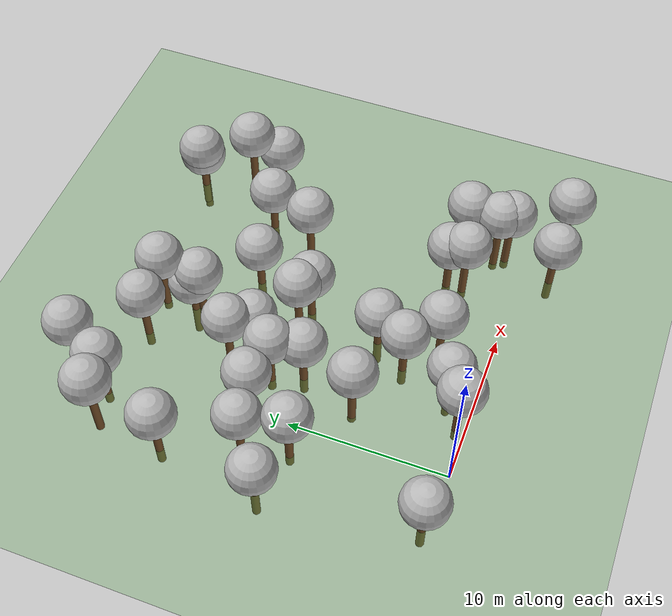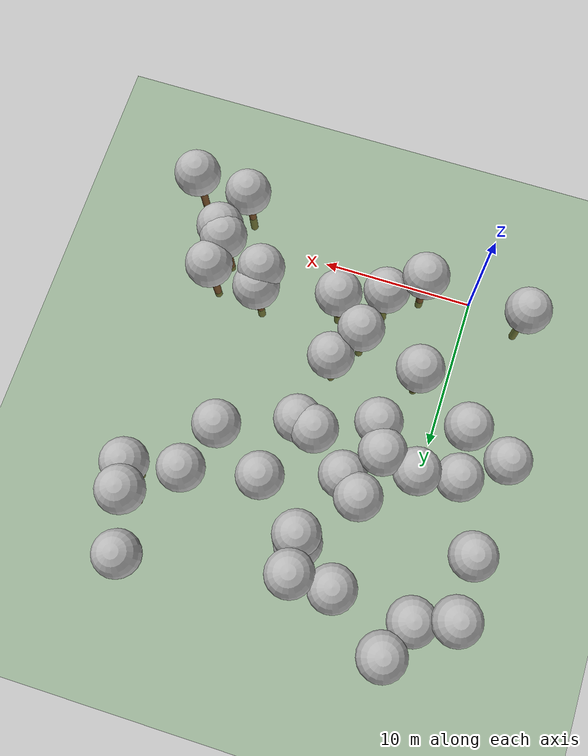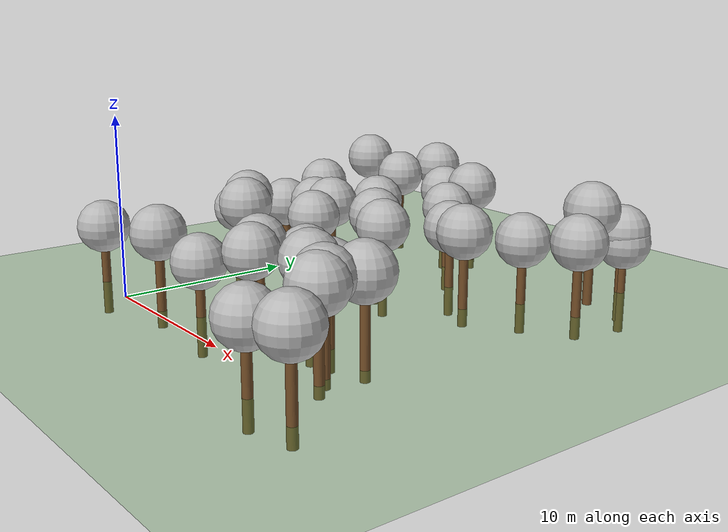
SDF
<sdf version="1.5">
 <world name="default">
  <model name="tree_simple497">
   <static>1</static>
   <link name="link">
    <pose>0 0 0.1 0 -0 0</pose>
    <collision name="collision_trunk">
     <pose>0 0 2 0 -0 0</pose>
     <geometry><cylinder><radius>0.25</radius><length>4</length></cylinder></geometry>
    </collision>
    <collision name="collision_treetop">
     <pose>0 0 5.2 0 -0 0</pose>
     <geometry><sphere><radius>1.5</radius></sphere></geometry>
    </collision>
    <visual name="trunk">
     <pose>0 0 2 0 -0 0</pose>
     <geometry><cylinder><radius>0.25</radius><length>4</length></cylinder></geometry>
     <material>
      <script>
       <uri>model://tree_simple/scripts</uri>
       <uri>model://tree_simple/materials/textures</uri>
       <name>TreeSimple/Trunk</name>
      </script>
     </material>
    </visual>
    <visual name="treetop">
     <pose>0 0 5.2 0 -0 0</pose>
     <geometry><sphere><radius>1.5</radius></sphere></geometry>
     <material>
      <script>
       <uri>model://tree_simple/scripts</uri>
       <uri>model://tree_simple/materials/textures</uri>
       <name>TreeSimple/Treetop</name>
      </script>
     </material>
    </visual>
   </link>
   <pose>16.5730666381 19.0016793819 -0.0 0 -0 0</pose>
  </model>
  <model name="tree_simple495">
   <static>1</static>
   <link name="link">
    <pose>0 0 0.1 0 -0 0</pose>
    <collision name="collision_trunk">
     <pose>0 0 2 0 -0 0</pose>
     <geometry><cylinder><radius>0.25</radius><length>4</length></cylinder></geometry>
    </collision>
    <collision name="collision_treetop">
     <pose>0 0 5.2 0 -0 0</pose>
     <geometry><sphere><radius>1.5</radius></sphere></geometry>
    </collision>
    <visual name="trunk">
     <pose>0 0 2 0 -0 0</pose>
     <geometry><cylinder><radius>0.25</radius><length>4</length></cylinder></geometry>
     <material>
      <script>
       <uri>model://tree_simple/scripts</uri>
       <uri>model://tree_simple/materials/textures</uri>
       <name>TreeSimple/Trunk</name>
      </script>
     </material>
    </visual>
    <visual name="treetop">
     <pose>0 0 5.2 0 -0 0</pose>
     <geometry><sphere><radius>1.5</radius></sphere></geometry>
     <material>
      <script>
       <uri>model://tree_simple/scripts</uri>
       <uri>model://tree_simple/materials/textures</uri>
       <name>TreeSimple/Treetop</name>
      </script>
     </material>
    </visual>
   </link>
   <pose>13.2663357304 3.23501246435 -0.7742167042662054 0 -0 0</pose>
  </model>
  <model name="tree_simple486">
   <static>1</static>
   <link name="link">
    <pose>0 0 0.1 0 -0 0</pose>
    <collision name="collision_trunk">
     <pose>0 0 2 0 -0 0</pose>
     <geometry><cylinder><radius>0.25</radius><length>4</length></cylinder></geometry>
    </collision>
    <collision name="collision_treetop">
     <pose>0 0 5.2 0 -0 0</pose>
     <geometry><sphere><radius>1.5</radius></sphere></geometry>
    </collision>
    <visual name="trunk">
     <pose>0 0 2 0 -0 0</pose>
     <geometry><cylinder><radius>0.25</radius><length>4</length></cylinder></geometry>
     <material>
      <script>
       <uri>model://tree_simple/scripts</uri>
       <uri>model://tree_simple/materials/textures</uri>
       <name>TreeSimple/Trunk</name>
      </script>
     </material>
    </visual>
    <visual name="treetop">
     <pose>0 0 5.2 0 -0 0</pose>
     <geometry><sphere><radius>1.5</radius></sphere></geometry>
     <material>
      <script>
       <uri>model://tree_simple/scripts</uri>
       <uri>model://tree_simple/materials/textures</uri>
       <name>TreeSimple/Treetop</name>
      </script>
     </material>
    </visual>
   </link>
   <pose>8.18281559396 11.6524151823 -1.3867703076284112 0 -0 0</pose>
  </model>
  <model name="tree_simple480">
   <static>1</static>
   <link name="link">
    <pose>0 0 0.1 0 -0 0</pose>
    <collision name="collision_trunk">
     <pose>0 0 2 0 -0 0</pose>
     <geometry><cylinder><radius>0.25</radius><length>4</length></cylinder></geometry>
    </collision>
    <collision name="collision_treetop">
     <pose>0 0 5.2 0 -0 0</pose>
     <geometry><sphere><radius>1.5</radius></sphere></geometry>
    </collision>
    <visual name="trunk">
     <pose>0 0 2 0 -0 0</pose>
     <geometry><cylinder><radius>0.25</radius><length>4</length></cylinder></geometry>
     <material>
      <script>
       <uri>model://tree_simple/scripts</uri>
       <uri>model://tree_simple/materials/textures</uri>
       <name>TreeSimple/Trunk</name>
      </script>
     </material>
    </visual>
    <visual name="treetop">
     <pose>0 0 5.2 0 -0 0</pose>
     <geometry><sphere><radius>1.5</radius></sphere></geometry>
     <material>
      <script>
       <uri>model://tree_simple/scripts</uri>
       <uri>model://tree_simple/materials/textures</uri>
       <name>TreeSimple/Treetop</name>
      </script>
     </material>
    </visual>
   </link>
   <pose>-2.16211412072 12.1351070175 -1.9079232740041454 0 -0 0</pose>
  </model>
  <model name="tree_simple471">
   <static>1</static>
   <link name="link">
    <pose>0 0 0.1 0 -0 0</pose>
    <collision name="collision_trunk">
     <pose>0 0 2 0 -0 0</pose>
     <geometry><cylinder><radius>0.25</radius><length>4</length></cylinder></geometry>
    </collision>
    <collision name="collision_treetop">
     <pose>0 0 5.2 0 -0 0</pose>
     <geometry><sphere><radius>1.5</radius></sphere></geometry>
    </collision>
    <visual name="trunk">
     <pose>0 0 2 0 -0 0</pose>
     <geometry><cylinder><radius>0.25</radius><length>4</length></cylinder></geometry>
     <material>
      <script>
       <uri>model://tree_simple/scripts</uri>
       <uri>model://tree_simple/materials/textures</uri>
       <name>TreeSimple/Trunk</name>
      </script>
     </material>
    </visual>
    <visual name="treetop">
     <pose>0 0 5.2 0 -0 0</pose>
     <geometry><sphere><radius>1.5</radius></sphere></geometry>
     <material>
      <script>
       <uri>model://tree_simple/scripts</uri>
       <uri>model://tree_simple/materials/textures</uri>
       <name>TreeSimple/Treetop</name>
      </script>
     </material>
    </visual>
   </link>
   <pose>-4.10985349052 16.4703272545 -1.4061973708859414 0 -0 0</pose>
  </model>
  <model name="tree_simple465">
   <static>1</static>
   <link name="link">
    <pose>0 0 0.1 0 -0 0</pose>
    <collision name="collision_trunk">
     <pose>0 0 2 0 -0 0</pose>
     <geometry><cylinder><radius>0.25</radius><length>4</length></cylinder></geometry>
    </collision>
    <collision name="collision_treetop">
     <pose>0 0 5.2 0 -0 0</pose>
     <geometry><sphere><radius>1.5</radius></sphere></geometry>
    </collision>
    <visual name="trunk">
     <pose>0 0 2 0 -0 0</pose>
     <geometry><cylinder><radius>0.25</radius><length>4</length></cylinder></geometry>
     <material>
      <script>
       <uri>model://tree_simple/scripts</uri>
       <uri>model://tree_simple/materials/textures</uri>
       <name>TreeSimple/Trunk</name>
      </script>
     </material>
    </visual>
    <visual name="treetop">
     <pose>0 0 5.2 0 -0 0</pose>
     <geometry><sphere><radius>1.5</radius></sphere></geometry>
     <material>
      <script>
       <uri>model://tree_simple/scripts</uri>
       <uri>model://tree_simple/materials/textures</uri>
       <name>TreeSimple/Treetop</name>
      </script>
     </material>
    </visual>
   </link>
   <pose>5.78708546562 20.6382949275 -0.713355975327963 0 -0 0</pose>
  </model>
  <model name="tree_simple450">
   <static>1</static>
   <link name="link">
    <pose>0 0 0.1 0 -0 0</pose>
    <collision name="collision_trunk">
     <pose>0 0 2 0 -0 0</pose>
     <geometry><cylinder><radius>0.25</radius><length>4</length></cylinder></geometry>
    </collision>
    <collision name="collision_treetop">
     <pose>0 0 5.2 0 -0 0</pose>
     <geometry><sphere><radius>1.5</radius></sphere></geometry>
    </collision>
    <visual name="trunk">
     <pose>0 0 2 0 -0 0</pose>
     <geometry><cylinder><radius>0.25</radius><length>4</length></cylinder></geometry>
     <material>
      <script>
       <uri>model://tree_simple/scripts</uri>
       <uri>model://tree_simple/materials/textures</uri>
       <name>TreeSimple/Trunk</name>
      </script>
     </material>
    </visual>
    <visual name="treetop">
     <pose>0 0 5.2 0 -0 0</pose>
     <geometry><sphere><radius>1.5</radius></sphere></geometry>
     <material>
      <script>
       <uri>model://tree_simple/scripts</uri>
       <uri>model://tree_simple/materials/textures</uri>
       <name>TreeSimple/Treetop</name>
      </script>
     </material>
    </visual>
   </link>
   <pose>16.0273432372 22.5148519884 -2.4468775244466086 0 -0 0</pose>
  </model>
  <model name="tree_simple442">
   <static>1</static>
   <link name="link">
    <pose>0 0 0.1 0 -0 0</pose>
    <collision name="collision_trunk">
     <pose>0 0 2 0 -0 0</pose>
     <geometry><cylinder><radius>0.25</radius><length>4</length></cylinder></geometry>
    </collision>
    <collision name="collision_treetop">
     <pose>0 0 5.2 0 -0 0</pose>
     <geometry><sphere><radius>1.5</radius></sphere></geometry>
    </collision>
    <visual name="trunk">
     <pose>0 0 2 0 -0 0</pose>
     <geometry><cylinder><radius>0.25</radius><length>4</length></cylinder></geometry>
     <material>
      <script>
       <uri>model://tree_simple/scripts</uri>
       <uri>model://tree_simple/materials/textures</uri>
       <name>TreeSimple/Trunk</name>
      </script>
     </material>
    </visual>
    <visual name="treetop">
     <pose>0 0 5.2 0 -0 0</pose>
     <geometry><sphere><radius>1.5</radius></sphere></geometry>
     <material>
      <script>
       <uri>model://tree_simple/scripts</uri>
       <uri>model://tree_simple/materials/textures</uri>
       <name>TreeSimple/Treetop</name>
      </script>
     </material>
    </visual>
   </link>
   <pose>-1.68249170611 21.1094247696 -1.0683993130497795 0 -0 0</pose>
  </model>
  <model name="tree_simple421">
   <static>1</static>
   <link name="link">
    <pose>0 0 0.1 0 -0 0</pose>
    <collision name="collision_trunk">
     <pose>0 0 2 0 -0 0</pose>
     <geometry><cylinder><radius>0.25</radius><length>4</length></cylinder></geometry>
    </collision>
    <collision name="collision_treetop">
     <pose>0 0 5.2 0 -0 0</pose>
     <geometry><sphere><radius>1.5</radius></sphere></geometry>
    </collision>
    <visual name="trunk">
     <pose>0 0 2 0 -0 0</pose>
     <geometry><cylinder><radius>0.25</radius><length>4</length></cylinder></geometry>
     <material>
      <script>
       <uri>model://tree_simple/scripts</uri>
       <uri>model://tree_simple/materials/textures</uri>
       <name>TreeSimple/Trunk</name>
      </script>
     </material>
    </visual>
    <visual name="treetop">
     <pose>0 0 5.2 0 -0 0</pose>
     <geometry><sphere><radius>1.5</radius></sphere></geometry>
     <material>
      <script>
       <uri>model://tree_simple/scripts</uri>
       <uri>model://tree_simple/materials/textures</uri>
       <name>TreeSimple/Treetop</name>
      </script>
     </material>
    </visual>
   </link>
   <pose>7.02492588621 12.0559728025 -1.035624794997579 0 -0 0</pose>
  </model>
  <model name="tree_simple417">
   <static>1</static>
   <link name="link">
    <pose>0 0 0.1 0 -0 0</pose>
    <collision name="collision_trunk">
     <pose>0 0 2 0 -0 0</pose>
     <geometry><cylinder><radius>0.25</radius><length>4</length></cylinder></geometry>
    </collision>
    <collision name="collision_treetop">
     <pose>0 0 5.2 0 -0 0</pose>
     <geometry><sphere><radius>1.5</radius></sphere></geometry>
    </collision>
    <visual name="trunk">
     <pose>0 0 2 0 -0 0</pose>
     <geometry><cylinder><radius>0.25</radius><length>4</length></cylinder></geometry>
     <material>
      <script>
       <uri>model://tree_simple/scripts</uri>
       <uri>model://tree_simple/materials/textures</uri>
       <name>TreeSimple/Trunk</name>
      </script>
     </material>
    </visual>
    <visual name="treetop">
     <pose>0 0 5.2 0 -0 0</pose>
     <geometry><sphere><radius>1.5</radius></sphere></geometry>
     <material>
      <script>
       <uri>model://tree_simple/scripts</uri>
       <uri>model://tree_simple/materials/textures</uri>
       <name>TreeSimple/Treetop</name>
      </script>
     </material>
    </visual>
   </link>
   <pose>-1.82310579314 9.17527441854 -1.0092086057715548 0 -0 0</pose>
  </model>
  <model name="tree_simple412">
   <static>1</static>
   <link name="link">
    <pose>0 0 0.1 0 -0 0</pose>
    <collision name="collision_trunk">
     <pose>0 0 2 0 -0 0</pose>
     <geometry><cylinder><radius>0.25</radius><length>4</length></cylinder></geometry>
    </collision>
    <collision name="collision_treetop">
     <pose>0 0 5.2 0 -0 0</pose>
     <geometry><sphere><radius>1.5</radius></sphere></geometry>
    </collision>
    <visual name="trunk">
     <pose>0 0 2 0 -0 0</pose>
     <geometry><cylinder><radius>0.25</radius><length>4</length></cylinder></geometry>
     <material>
      <script>
       <uri>model://tree_simple/scripts</uri>
       <uri>model://tree_simple/materials/textures</uri>
       <name>TreeSimple/Trunk</name>
      </script>
     </material>
    </visual>
    <visual name="treetop">
     <pose>0 0 5.2 0 -0 0</pose>
     <geometry><sphere><radius>1.5</radius></sphere></geometry>
     <material>
      <script>
       <uri>model://tree_simple/scripts</uri>
       <uri>model://tree_simple/materials/textures</uri>
       <name>TreeSimple/Treetop</name>
      </script>
     </material>
    </visual>
   </link>
   <pose>1.94235434688 6.68973059551 -0.5766487239624348 0 -0 0</pose>
  </model>
  <model name="tree_simple376">
   <static>1</static>
   <link name="link">
    <pose>0 0 0.1 0 -0 0</pose>
    <collision name="collision_trunk">
     <pose>0 0 2 0 -0 0</pose>
     <geometry><cylinder><radius>0.25</radius><length>4</length></cylinder></geometry>
    </collision>
    <collision name="collision_treetop">
     <pose>0 0 5.2 0 -0 0</pose>
     <geometry><sphere><radius>1.5</radius></sphere></geometry>
    </collision>
    <visual name="trunk">
     <pose>0 0 2 0 -0 0</pose>
     <geometry><cylinder><radius>0.25</radius><length>4</length></cylinder></geometry>
     <material>
      <script>
       <uri>model://tree_simple/scripts</uri>
       <uri>model://tree_simple/materials/textures</uri>
       <name>TreeSimple/Trunk</name>
      </script>
     </material>
    </visual>
    <visual name="treetop">
     <pose>0 0 5.2 0 -0 0</pose>
     <geometry><sphere><radius>1.5</radius></sphere></geometry>
     <material>
      <script>
       <uri>model://tree_simple/scripts</uri>
       <uri>model://tree_simple/materials/textures</uri>
       <name>TreeSimple/Treetop</name>
      </script>
     </material>
    </visual>
   </link>
   <pose>-3.57495660346 0.511559407044 -2.031902750603006 0 -0 0</pose>
  </model>
  <model name="tree_simple350">
   <static>1</static>
   <link name="link">
    <pose>0 0 0.1 0 -0 0</pose>
    <collision name="collision_trunk">
     <pose>0 0 2 0 -0 0</pose>
     <geometry><cylinder><radius>0.25</radius><length>4</length></cylinder></geometry>
    </collision>
    <collision name="collision_treetop">
     <pose>0 0 5.2 0 -0 0</pose>
     <geometry><sphere><radius>1.5</radius></sphere></geometry>
    </collision>
    <visual name="trunk">
     <pose>0 0 2 0 -0 0</pose>
     <geometry><cylinder><radius>0.25</radius><length>4</length></cylinder></geometry>
     <material>
      <script>
       <uri>model://tree_simple/scripts</uri>
       <uri>model://tree_simple/materials/textures</uri>
       <name>TreeSimple/Trunk</name>
      </script>
     </material>
    </visual>
    <visual name="treetop">
     <pose>0 0 5.2 0 -0 0</pose>
     <geometry><sphere><radius>1.5</radius></sphere></geometry>
     <material>
      <script>
       <uri>model://tree_simple/scripts</uri>
       <uri>model://tree_simple/materials/textures</uri>
       <name>TreeSimple/Treetop</name>
      </script>
     </material>
    </visual>
   </link>
   <pose>5.40258361507 1.7380066323 -2.355881114736431 0 -0 0</pose>
  </model>
  <model name="tree_simple346">
   <static>1</static>
   <link name="link">
    <pose>0 0 0.1 0 -0 0</pose>
    <collision name="collision_trunk">
     <pose>0 0 2 0 -0 0</pose>
     <geometry><cylinder><radius>0.25</radius><length>4</length></cylinder></geometry>
    </collision>
    <collision name="collision_treetop">
     <pose>0 0 5.2 0 -0 0</pose>
     <geometry><sphere><radius>1.5</radius></sphere></geometry>
    </collision>
    <visual name="trunk">
     <pose>0 0 2 0 -0 0</pose>
     <geometry><cylinder><radius>0.25</radius><length>4</length></cylinder></geometry>
     <material>
      <script>
       <uri>model://tree_simple/scripts</uri>
       <uri>model://tree_simple/materials/textures</uri>
       <name>TreeSimple/Trunk</name>
      </script>
     </material>
    </visual>
    <visual name="treetop">
     <pose>0 0 5.2 0 -0 0</pose>
     <geometry><sphere><radius>1.5</radius></sphere></geometry>
     <material>
      <script>
       <uri>model://tree_simple/scripts</uri>
       <uri>model://tree_simple/materials/textures</uri>
       <name>TreeSimple/Treetop</name>
      </script>
     </material>
    </visual>
   </link>
   <pose>6.18558583868 4.91340003373 -1.6404958224859096 0 -0 0</pose>
  </model>
  <model name="tree_simple324">
   <static>1</static>
   <link name="link">
    <pose>0 0 0.1 0 -0 0</pose>
    <collision name="collision_trunk">
     <pose>0 0 2 0 -0 0</pose>
     <geometry><cylinder><radius>0.25</radius><length>4</length></cylinder></geometry>
    </collision>
    <collision name="collision_treetop">
     <pose>0 0 5.2 0 -0 0</pose>
     <geometry><sphere><radius>1.5</radius></sphere></geometry>
    </collision>
    <visual name="trunk">
     <pose>0 0 2 0 -0 0</pose>
     <geometry><cylinder><radius>0.25</radius><length>4</length></cylinder></geometry>
     <material>
      <script>
       <uri>model://tree_simple/scripts</uri>
       <uri>model://tree_simple/materials/textures</uri>
       <name>TreeSimple/Trunk</name>
      </script>
     </material>
    </visual>
    <visual name="treetop">
     <pose>0 0 5.2 0 -0 0</pose>
     <geometry><sphere><radius>1.5</radius></sphere></geometry>
     <material>
      <script>
       <uri>model://tree_simple/scripts</uri>
       <uri>model://tree_simple/materials/textures</uri>
       <name>TreeSimple/Treetop</name>
      </script>
     </material>
    </visual>
   </link>
   <pose>2.67974288493 12.1656578915 -1.0963913601975828 0 -0 0</pose>
  </model>
  <model name="tree_simple316">
   <static>1</static>
   <link name="link">
    <pose>0 0 0.1 0 -0 0</pose>
    <collision name="collision_trunk">
     <pose>0 0 2 0 -0 0</pose>
     <geometry><cylinder><radius>0.25</radius><length>4</length></cylinder></geometry>
    </collision>
    <collision name="collision_treetop">
     <pose>0 0 5.2 0 -0 0</pose>
     <geometry><sphere><radius>1.5</radius></sphere></geometry>
    </collision>
    <visual name="trunk">
     <pose>0 0 2 0 -0 0</pose>
     <geometry><cylinder><radius>0.25</radius><length>4</length></cylinder></geometry>
     <material>
      <script>
       <uri>model://tree_simple/scripts</uri>
       <uri>model://tree_simple/materials/textures</uri>
       <name>TreeSimple/Trunk</name>
      </script>
     </material>
    </visual>
    <visual name="treetop">
     <pose>0 0 5.2 0 -0 0</pose>
     <geometry><sphere><radius>1.5</radius></sphere></geometry>
     <material>
      <script>
       <uri>model://tree_simple/scripts</uri>
       <uri>model://tree_simple/materials/textures</uri>
       <name>TreeSimple/Treetop</name>
      </script>
     </material>
    </visual>
   </link>
   <pose>19.3529599153 -1.91242662106 -1.1544428258638495 0 -0 0</pose>
  </model>
  <model name="tree_simple314">
   <static>1</static>
   <link name="link">
    <pose>0 0 0.1 0 -0 0</pose>
    <collision name="collision_trunk">
     <pose>0 0 2 0 -0 0</pose>
     <geometry><cylinder><radius>0.25</radius><length>4</length></cylinder></geometry>
    </collision>
    <collision name="collision_treetop">
     <pose>0 0 5.2 0 -0 0</pose>
     <geometry><sphere><radius>1.5</radius></sphere></geometry>
    </collision>
    <visual name="trunk">
     <pose>0 0 2 0 -0 0</pose>
     <geometry><cylinder><radius>0.25</radius><length>4</length></cylinder></geometry>
     <material>
      <script>
       <uri>model://tree_simple/scripts</uri>
       <uri>model://tree_simple/materials/textures</uri>
       <name>TreeSimple/Trunk</name>
      </script>
     </material>
    </visual>
    <visual name="treetop">
     <pose>0 0 5.2 0 -0 0</pose>
     <geometry><sphere><radius>1.5</radius></sphere></geometry>
     <material>
      <script>
       <uri>model://tree_simple/scripts</uri>
       <uri>model://tree_simple/materials/textures</uri>
       <name>TreeSimple/Treetop</name>
      </script>
     </material>
    </visual>
   </link>
   <pose>15.9305866253 -1.88175491407 -1.7362658700538236 0 -0 0</pose>
  </model>
  <model name="tree_simple308">
   <static>1</static>
   <link name="link">
    <pose>0 0 0.1 0 -0 0</pose>
    <collision name="collision_trunk">
     <pose>0 0 2 0 -0 0</pose>
     <geometry><cylinder><radius>0.25</radius><length>4</length></cylinder></geometry>
    </collision>
    <collision name="collision_treetop">
     <pose>0 0 5.2 0 -0 0</pose>
     <geometry><sphere><radius>1.5</radius></sphere></geometry>
    </collision>
    <visual name="trunk">
     <pose>0 0 2 0 -0 0</pose>
     <geometry><cylinder><radius>0.25</radius><length>4</length></cylinder></geometry>
     <material>
      <script>
       <uri>model://tree_simple/scripts</uri>
       <uri>model://tree_simple/materials/textures</uri>
       <name>TreeSimple/Trunk</name>
      </script>
     </material>
    </visual>
    <visual name="treetop">
     <pose>0 0 5.2 0 -0 0</pose>
     <geometry><sphere><radius>1.5</radius></sphere></geometry>
     <material>
      <script>
       <uri>model://tree_simple/scripts</uri>
       <uri>model://tree_simple/materials/textures</uri>
       <name>TreeSimple/Treetop</name>
      </script>
     </material>
    </visual>
   </link>
   <pose>3.23733276298 0.582978933188 -1.0785841440412087 0 -0 0</pose>
  </model>
  <model name="tree_simple304">
   <static>1</static>
   <link name="link">
    <pose>0 0 0.1 0 -0 0</pose>
    <collision name="collision_trunk">
     <pose>0 0 2 0 -0 0</pose>
     <geometry><cylinder><radius>0.25</radius><length>4</length></cylinder></geometry>
    </collision>
    <collision name="collision_treetop">
     <pose>0 0 5.2 0 -0 0</pose>
     <geometry><sphere><radius>1.5</radius></sphere></geometry>
    </collision>
    <visual name="trunk">
     <pose>0 0 2 0 -0 0</pose>
     <geometry><cylinder><radius>0.25</radius><length>4</length></cylinder></geometry>
     <material>
      <script>
       <uri>model://tree_simple/scripts</uri>
       <uri>model://tree_simple/materials/textures</uri>
       <name>TreeSimple/Trunk</name>
      </script>
     </material>
    </visual>
    <visual name="treetop">
     <pose>0 0 5.2 0 -0 0</pose>
     <geometry><sphere><radius>1.5</radius></sphere></geometry>
     <material>
      <script>
       <uri>model://tree_simple/scripts</uri>
       <uri>model://tree_simple/materials/textures</uri>
       <name>TreeSimple/Treetop</name>
      </script>
     </material>
    </visual>
   </link>
   <pose>12.7492321523 13.4736505169 -1.1249364671441788 0 -0 0</pose>
  </model>
  <model name="tree_simple269">
   <static>1</static>
   <link name="link">
    <pose>0 0 0.1 0 -0 0</pose>
    <collision name="collision_trunk">
     <pose>0 0 2 0 -0 0</pose>
     <geometry><cylinder><radius>0.25</radius><length>4</length></cylinder></geometry>
    </collision>
    <collision name="collision_treetop">
     <pose>0 0 5.2 0 -0 0</pose>
     <geometry><sphere><radius>1.5</radius></sphere></geometry>
    </collision>
    <visual name="trunk">
     <pose>0 0 2 0 -0 0</pose>
     <geometry><cylinder><radius>0.25</radius><length>4</length></cylinder></geometry>
     <material>
      <script>
       <uri>model://tree_simple/scripts</uri>
       <uri>model://tree_simple/materials/textures</uri>
       <name>TreeSimple/Trunk</name>
      </script>
     </material>
    </visual>
    <visual name="treetop">
     <pose>0 0 5.2 0 -0 0</pose>
     <geometry><sphere><radius>1.5</radius></sphere></geometry>
     <material>
      <script>
       <uri>model://tree_simple/scripts</uri>
       <uri>model://tree_simple/materials/textures</uri>
       <name>TreeSimple/Treetop</name>
      </script>
     </material>
    </visual>
   </link>
   <pose>3.4316618278 10.3418603378 -1.542322665156363 0 -0 0</pose>
  </model>
  <model name="tree_simple246">
   <static>1</static>
   <link name="link">
    <pose>0 0 0.1 0 -0 0</pose>
    <collision name="collision_trunk">
     <pose>0 0 2 0 -0 0</pose>
     <geometry><cylinder><radius>0.25</radius><length>4</length></cylinder></geometry>
    </collision>
    <collision name="collision_treetop">
     <pose>0 0 5.2 0 -0 0</pose>
     <geometry><sphere><radius>1.5</radius></sphere></geometry>
    </collision>
    <visual name="trunk">
     <pose>0 0 2 0 -0 0</pose>
     <geometry><cylinder><radius>0.25</radius><length>4</length></cylinder></geometry>
     <material>
      <script>
       <uri>model://tree_simple/scripts</uri>
       <uri>model://tree_simple/materials/textures</uri>
       <name>TreeSimple/Trunk</name>
      </script>
     </material>
    </visual>
    <visual name="treetop">
     <pose>0 0 5.2 0 -0 0</pose>
     <geometry><sphere><radius>1.5</radius></sphere></geometry>
     <material>
      <script>
       <uri>model://tree_simple/scripts</uri>
       <uri>model://tree_simple/materials/textures</uri>
       <name>TreeSimple/Treetop</name>
      </script>
     </material>
    </visual>
   </link>
   <pose>4.59531277399 14.0377896265 -1.9511360510924267 0 -0 0</pose>
  </model>
  <model name="tree_simple214">
   <static>1</static>
   <link name="link">
    <pose>0 0 0.1 0 -0 0</pose>
    <collision name="collision_trunk">
     <pose>0 0 2 0 -0 0</pose>
     <geometry><cylinder><radius>0.25</radius><length>4</length></cylinder></geometry>
    </collision>
    <collision name="collision_treetop">
     <pose>0 0 5.2 0 -0 0</pose>
     <geometry><sphere><radius>1.5</radius></sphere></geometry>
    </collision>
    <visual name="trunk">
     <pose>0 0 2 0 -0 0</pose>
     <geometry><cylinder><radius>0.25</radius><length>4</length></cylinder></geometry>
     <material>
      <script>
       <uri>model://tree_simple/scripts</uri>
       <uri>model://tree_simple/materials/textures</uri>
       <name>TreeSimple/Trunk</name>
      </script>
     </material>
    </visual>
    <visual name="treetop">
     <pose>0 0 5.2 0 -0 0</pose>
     <geometry><sphere><radius>1.5</radius></sphere></geometry>
     <material>
      <script>
       <uri>model://tree_simple/scripts</uri>
       <uri>model://tree_simple/materials/textures</uri>
       <name>TreeSimple/Treetop</name>
      </script>
     </material>
    </visual>
   </link>
   <pose>16.4618787814 3.98227082292 -0.7304466365470268 0 -0 0</pose>
  </model>
  <model name="tree_simple177">
   <static>1</static>
   <link name="link">
    <pose>0 0 0.1 0 -0 0</pose>
    <collision name="collision_trunk">
     <pose>0 0 2 0 -0 0</pose>
     <geometry><cylinder><radius>0.25</radius><length>4</length></cylinder></geometry>
    </collision>
    <collision name="collision_treetop">
     <pose>0 0 5.2 0 -0 0</pose>
     <geometry><sphere><radius>1.5</radius></sphere></geometry>
    </collision>
    <visual name="trunk">
     <pose>0 0 2 0 -0 0</pose>
     <geometry><cylinder><radius>0.25</radius><length>4</length></cylinder></geometry>
     <material>
      <script>
       <uri>model://tree_simple/scripts</uri>
       <uri>model://tree_simple/materials/textures</uri>
       <name>TreeSimple/Trunk</name>
      </script>
     </material>
    </visual>
    <visual name="treetop">
     <pose>0 0 5.2 0 -0 0</pose>
     <geometry><sphere><radius>1.5</radius></sphere></geometry>
     <material>
      <script>
       <uri>model://tree_simple/scripts</uri>
       <uri>model://tree_simple/materials/textures</uri>
       <name>TreeSimple/Treetop</name>
      </script>
     </material>
    </visual>
   </link>
   <pose>5.95472873547 18.7195439191 -2.5 0 -0 0</pose>
  </model>
  <model name="tree_simple175">
   <static>1</static>
   <link name="link">
    <pose>0 0 0.1 0 -0 0</pose>
    <collision name="collision_trunk">
     <pose>0 0 2 0 -0 0</pose>
     <geometry><cylinder><radius>0.25</radius><length>4</length></cylinder></geometry>
    </collision>
    <collision name="collision_treetop">
     <pose>0 0 5.2 0 -0 0</pose>
     <geometry><sphere><radius>1.5</radius></sphere></geometry>
    </collision>
    <visual name="trunk">
     <pose>0 0 2 0 -0 0</pose>
     <geometry><cylinder><radius>0.25</radius><length>4</length></cylinder></geometry>
     <material>
      <script>
       <uri>model://tree_simple/scripts</uri>
       <uri>model://tree_simple/materials/textures</uri>
       <name>TreeSimple/Trunk</name>
      </script>
     </material>
    </visual>
    <visual name="treetop">
     <pose>0 0 5.2 0 -0 0</pose>
     <geometry><sphere><radius>1.5</radius></sphere></geometry>
     <material>
      <script>
       <uri>model://tree_simple/scripts</uri>
       <uri>model://tree_simple/materials/textures</uri>
       <name>TreeSimple/Treetop</name>
      </script>
     </material>
    </visual>
   </link>
   <pose>-0.556108098606 23.4554331428 -0.5386698420561435 0 -0 0</pose>
  </model>
  <model name="tree_simple160">
   <static>1</static>
   <link name="link">
    <pose>0 0 0.1 0 -0 0</pose>
    <collision name="collision_trunk">
     <pose>0 0 2 0 -0 0</pose>
     <geometry><cylinder><radius>0.25</radius><length>4</length></cylinder></geometry>
    </collision>
    <collision name="collision_treetop">
     <pose>0 0 5.2 0 -0 0</pose>
     <geometry><sphere><radius>1.5</radius></sphere></geometry>
    </collision>
    <visual name="trunk">
     <pose>0 0 2 0 -0 0</pose>
     <geometry><cylinder><radius>0.25</radius><length>4</length></cylinder></geometry>
     <material>
      <script>
       <uri>model://tree_simple/scripts</uri>
       <uri>model://tree_simple/materials/textures</uri>
       <name>TreeSimple/Trunk</name>
      </script>
     </material>
    </visual>
    <visual name="treetop">
     <pose>0 0 5.2 0 -0 0</pose>
     <geometry><sphere><radius>1.5</radius></sphere></geometry>
     <material>
      <script>
       <uri>model://tree_simple/scripts</uri>
       <uri>model://tree_simple/materials/textures</uri>
       <name>TreeSimple/Treetop</name>
      </script>
     </material>
    </visual>
   </link>
   <pose>3.31258380175 15.1525774981 -1.255283029194799 0 -0 0</pose>
  </model>
  <model name="tree_simple145">
   <static>1</static>
   <link name="link">
    <pose>0 0 0.1 0 -0 0</pose>
    <collision name="collision_trunk">
     <pose>0 0 2 0 -0 0</pose>
     <geometry><cylinder><radius>0.25</radius><length>4</length></cylinder></geometry>
    </collision>
    <collision name="collision_treetop">
     <pose>0 0 5.2 0 -0 0</pose>
     <geometry><sphere><radius>1.5</radius></sphere></geometry>
    </collision>
    <visual name="trunk">
     <pose>0 0 2 0 -0 0</pose>
     <geometry><cylinder><radius>0.25</radius><length>4</length></cylinder></geometry>
     <material>
      <script>
       <uri>model://tree_simple/scripts</uri>
       <uri>model://tree_simple/materials/textures</uri>
       <name>TreeSimple/Trunk</name>
      </script>
     </material>
    </visual>
    <visual name="treetop">
     <pose>0 0 5.2 0 -0 0</pose>
     <geometry><sphere><radius>1.5</radius></sphere></geometry>
     <material>
      <script>
       <uri>model://tree_simple/scripts</uri>
       <uri>model://tree_simple/materials/textures</uri>
       <name>TreeSimple/Treetop</name>
      </script>
     </material>
    </visual>
   </link>
   <pose>7.53257093085 6.9864658102 -2.2550341497198647 0 -0 0</pose>
  </model>
  <model name="tree_simple130">
   <static>1</static>
   <link name="link">
    <pose>0 0 0.1 0 -0 0</pose>
    <collision name="collision_trunk">
     <pose>0 0 2 0 -0 0</pose>
     <geometry><cylinder><radius>0.25</radius><length>4</length></cylinder></geometry>
    </collision>
    <collision name="collision_treetop">
     <pose>0 0 5.2 0 -0 0</pose>
     <geometry><sphere><radius>1.5</radius></sphere></geometry>
    </collision>
    <visual name="trunk">
     <pose>0 0 2 0 -0 0</pose>
     <geometry><cylinder><radius>0.25</radius><length>4</length></cylinder></geometry>
     <material>
      <script>
       <uri>model://tree_simple/scripts</uri>
       <uri>model://tree_simple/materials/textures</uri>
       <name>TreeSimple/Trunk</name>
      </script>
     </material>
    </visual>
    <visual name="treetop">
     <pose>0 0 5.2 0 -0 0</pose>
     <geometry><sphere><radius>1.5</radius></sphere></geometry>
     <material>
      <script>
       <uri>model://tree_simple/scripts</uri>
       <uri>model://tree_simple/materials/textures</uri>
       <name>TreeSimple/Treetop</name>
      </script>
     </material>
    </visual>
   </link>
   <pose>-4.79782028342 10.1484836022 -2.5 0 -0 0</pose>
  </model>
  <model name="tree_simple98">
   <static>1</static>
   <link name="link">
    <pose>0 0 0.1 0 -0 0</pose>
    <collision name="collision_trunk">
     <pose>0 0 2 0 -0 0</pose>
     <geometry><cylinder><radius>0.25</radius><length>4</length></cylinder></geometry>
    </collision>
    <collision name="collision_treetop">
     <pose>0 0 5.2 0 -0 0</pose>
     <geometry><sphere><radius>1.5</radius></sphere></geometry>
    </collision>
    <visual name="trunk">
     <pose>0 0 2 0 -0 0</pose>
     <geometry><cylinder><radius>0.25</radius><length>4</length></cylinder></geometry>
     <material>
      <script>
       <uri>model://tree_simple/scripts</uri>
       <uri>model://tree_simple/materials/textures</uri>
       <name>TreeSimple/Trunk</name>
      </script>
     </material>
    </visual>
    <visual name="treetop">
     <pose>0 0 5.2 0 -0 0</pose>
     <geometry><sphere><radius>1.5</radius></sphere></geometry>
     <material>
      <script>
       <uri>model://tree_simple/scripts</uri>
       <uri>model://tree_simple/materials/textures</uri>
       <name>TreeSimple/Treetop</name>
      </script>
     </material>
    </visual>
   </link>
   <pose>14.024693035 16.5700471203 -1.8029162068227715 0 -0 0</pose>
  </model>
  <model name="tree_simple95">
   <static>1</static>
   <link name="link">
    <pose>0 0 0.1 0 -0 0</pose>
    <collision name="collision_trunk">
     <pose>0 0 2 0 -0 0</pose>
     <geometry><cylinder><radius>0.25</radius><length>4</length></cylinder></geometry>
    </collision>
    <collision name="collision_treetop">
     <pose>0 0 5.2 0 -0 0</pose>
     <geometry><sphere><radius>1.5</radius></sphere></geometry>
    </collision>
    <visual name="trunk">
     <pose>0 0 2 0 -0 0</pose>
     <geometry><cylinder><radius>0.25</radius><length>4</length></cylinder></geometry>
     <material>
      <script>
       <uri>model://tree_simple/scripts</uri>
       <uri>model://tree_simple/materials/textures</uri>
       <name>TreeSimple/Trunk</name>
      </script>
     </material>
    </visual>
    <visual name="treetop">
     <pose>0 0 5.2 0 -0 0</pose>
     <geometry><sphere><radius>1.5</radius></sphere></geometry>
     <material>
      <script>
       <uri>model://tree_simple/scripts</uri>
       <uri>model://tree_simple/materials/textures</uri>
       <name>TreeSimple/Treetop</name>
      </script>
     </material>
    </visual>
   </link>
   <pose>3.20302207312 20.7020436907 -1.314061456548372 0 -0 0</pose>
  </model>
  <model name="tree_simple94">
   <static>1</static>
   <link name="link">
    <pose>0 0 0.1 0 -0 0</pose>
    <collision name="collision_trunk">
     <pose>0 0 2 0 -0 0</pose>
     <geometry><cylinder><radius>0.25</radius><length>4</length></cylinder></geometry>
    </collision>
    <collision name="collision_treetop">
     <pose>0 0 5.2 0 -0 0</pose>
     <geometry><sphere><radius>1.5</radius></sphere></geometry>
    </collision>
    <visual name="trunk">
     <pose>0 0 2 0 -0 0</pose>
     <geometry><cylinder><radius>0.25</radius><length>4</length></cylinder></geometry>
     <material>
      <script>
       <uri>model://tree_simple/scripts</uri>
       <uri>model://tree_simple/materials/textures</uri>
       <name>TreeSimple/Trunk</name>
      </script>
     </material>
    </visual>
    <visual name="treetop">
     <pose>0 0 5.2 0 -0 0</pose>
     <geometry><sphere><radius>1.5</radius></sphere></geometry>
     <material>
      <script>
       <uri>model://tree_simple/scripts</uri>
       <uri>model://tree_simple/materials/textures</uri>
       <name>TreeSimple/Treetop</name>
      </script>
     </material>
    </visual>
   </link>
   <pose>6.14879298853 18.2743585392 -1.6083128540579077 0 -0 0</pose>
  </model>
  <model name="tree_simple86">
   <static>1</static>
   <link name="link">
    <pose>0 0 0.1 0 -0 0</pose>
    <collision name="collision_trunk">
     <pose>0 0 2 0 -0 0</pose>
     <geometry><cylinder><radius>0.25</radius><length>4</length></cylinder></geometry>
    </collision>
    <collision name="collision_treetop">
     <pose>0 0 5.2 0 -0 0</pose>
     <geometry><sphere><radius>1.5</radius></sphere></geometry>
    </collision>
    <visual name="trunk">
     <pose>0 0 2 0 -0 0</pose>
     <geometry><cylinder><radius>0.25</radius><length>4</length></cylinder></geometry>
     <material>
      <script>
       <uri>model://tree_simple/scripts</uri>
       <uri>model://tree_simple/materials/textures</uri>
       <name>TreeSimple/Trunk</name>
      </script>
     </material>
    </visual>
    <visual name="treetop">
     <pose>0 0 5.2 0 -0 0</pose>
     <geometry><sphere><radius>1.5</radius></sphere></geometry>
     <material>
      <script>
       <uri>model://tree_simple/scripts</uri>
       <uri>model://tree_simple/materials/textures</uri>
       <name>TreeSimple/Treetop</name>
      </script>
     </material>
    </visual>
   </link>
   <pose>-4.02162942473 20.3702086514 -0.11243271205306571 0 -0 0</pose>
  </model>
  <model name="tree_simple85">
   <static>1</static>
   <link name="link">
    <pose>0 0 0.1 0 -0 0</pose>
    <collision name="collision_trunk">
     <pose>0 0 2 0 -0 0</pose>
     <geometry><cylinder><radius>0.25</radius><length>4</length></cylinder></geometry>
    </collision>
    <collision name="collision_treetop">
     <pose>0 0 5.2 0 -0 0</pose>
     <geometry><sphere><radius>1.5</radius></sphere></geometry>
    </collision>
    <visual name="trunk">
     <pose>0 0 2 0 -0 0</pose>
     <geometry><cylinder><radius>0.25</radius><length>4</length></cylinder></geometry>
     <material>
      <script>
       <uri>model://tree_simple/scripts</uri>
       <uri>model://tree_simple/materials/textures</uri>
       <name>TreeSimple/Trunk</name>
      </script>
     </material>
    </visual>
    <visual name="treetop">
     <pose>0 0 5.2 0 -0 0</pose>
     <geometry><sphere><radius>1.5</radius></sphere></geometry>
     <material>
      <script>
       <uri>model://tree_simple/scripts</uri>
       <uri>model://tree_simple/materials/textures</uri>
       <name>TreeSimple/Treetop</name>
      </script>
     </material>
    </visual>
   </link>
   <pose>9.34911088968 15.5834050792 -1.8255952170144463 0 -0 0</pose>
  </model>
  <model name="tree_simple84">
   <static>1</static>
   <link name="link">
    <pose>0 0 0.1 0 -0 0</pose>
    <collision name="collision_trunk">
     <pose>0 0 2 0 -0 0</pose>
     <geometry><cylinder><radius>0.25</radius><length>4</length></cylinder></geometry>
    </collision>
    <collision name="collision_treetop">
     <pose>0 0 5.2 0 -0 0</pose>
     <geometry><sphere><radius>1.5</radius></sphere></geometry>
    </collision>
    <visual name="trunk">
     <pose>0 0 2 0 -0 0</pose>
     <geometry><cylinder><radius>0.25</radius><length>4</length></cylinder></geometry>
     <material>
      <script>
       <uri>model://tree_simple/scripts</uri>
       <uri>model://tree_simple/materials/textures</uri>
       <name>TreeSimple/Trunk</name>
      </script>
     </material>
    </visual>
    <visual name="treetop">
     <pose>0 0 5.2 0 -0 0</pose>
     <geometry><sphere><radius>1.5</radius></sphere></geometry>
     <material>
      <script>
       <uri>model://tree_simple/scripts</uri>
       <uri>model://tree_simple/materials/textures</uri>
       <name>TreeSimple/Treetop</name>
      </script>
     </material>
    </visual>
   </link>
   <pose>17.2995655595 17.2600237407 -1.3666593604117963 0 -0 0</pose>
  </model>
  <model name="tree_simple81">
   <static>1</static>
   <link name="link">
    <pose>0 0 0.1 0 -0 0</pose>
    <collision name="collision_trunk">
     <pose>0 0 2 0 -0 0</pose>
     <geometry><cylinder><radius>0.25</radius><length>4</length></cylinder></geometry>
    </collision>
    <collision name="collision_treetop">
     <pose>0 0 5.2 0 -0 0</pose>
     <geometry><sphere><radius>1.5</radius></sphere></geometry>
    </collision>
    <visual name="trunk">
     <pose>0 0 2 0 -0 0</pose>
     <geometry><cylinder><radius>0.25</radius><length>4</length></cylinder></geometry>
     <material>
      <script>
       <uri>model://tree_simple/scripts</uri>
       <uri>model://tree_simple/materials/textures</uri>
       <name>TreeSimple/Trunk</name>
      </script>
     </material>
    </visual>
    <visual name="treetop">
     <pose>0 0 5.2 0 -0 0</pose>
     <geometry><sphere><radius>1.5</radius></sphere></geometry>
     <material>
      <script>
       <uri>model://tree_simple/scripts</uri>
       <uri>model://tree_simple/materials/textures</uri>
       <name>TreeSimple/Treetop</name>
      </script>
     </material>
    </visual>
   </link>
   <pose>13.3023094876 4.29219701126 -1.3556898605774466 0 -0 0</pose>
  </model>
  <model name="tree_simple74">
   <static>1</static>
   <link name="link">
    <pose>0 0 0.1 0 -0 0</pose>
    <collision name="collision_trunk">
     <pose>0 0 2 0 -0 0</pose>
     <geometry><cylinder><radius>0.25</radius><length>4</length></cylinder></geometry>
    </collision>
    <collision name="collision_treetop">
     <pose>0 0 5.2 0 -0 0</pose>
     <geometry><sphere><radius>1.5</radius></sphere></geometry>
    </collision>
    <visual name="trunk">
     <pose>0 0 2 0 -0 0</pose>
     <geometry><cylinder><radius>0.25</radius><length>4</length></cylinder></geometry>
     <material>
      <script>
       <uri>model://tree_simple/scripts</uri>
       <uri>model://tree_simple/materials/textures</uri>
       <name>TreeSimple/Trunk</name>
      </script>
     </material>
    </visual>
    <visual name="treetop">
     <pose>0 0 5.2 0 -0 0</pose>
     <geometry><sphere><radius>1.5</radius></sphere></geometry>
     <material>
      <script>
       <uri>model://tree_simple/scripts</uri>
       <uri>model://tree_simple/materials/textures</uri>
       <name>TreeSimple/Treetop</name>
      </script>
     </material>
    </visual>
   </link>
   <pose>16.1884917497 1.95365769223 -0.6540450431627397 0 -0 0</pose>
  </model>
  <model name="tree_simple72">
   <static>1</static>
   <link name="link">
    <pose>0 0 0.1 0 -0 0</pose>
    <collision name="collision_trunk">
     <pose>0 0 2 0 -0 0</pose>
     <geometry><cylinder><radius>0.25</radius><length>4</length></cylinder></geometry>
    </collision>
    <collision name="collision_treetop">
     <pose>0 0 5.2 0 -0 0</pose>
     <geometry><sphere><radius>1.5</radius></sphere></geometry>
    </collision>
    <visual name="trunk">
     <pose>0 0 2 0 -0 0</pose>
     <geometry><cylinder><radius>0.25</radius><length>4</length></cylinder></geometry>
     <material>
      <script>
       <uri>model://tree_simple/scripts</uri>
       <uri>model://tree_simple/materials/textures</uri>
       <name>TreeSimple/Trunk</name>
      </script>
     </material>
    </visual>
    <visual name="treetop">
     <pose>0 0 5.2 0 -0 0</pose>
     <geometry><sphere><radius>1.5</radius></sphere></geometry>
     <material>
      <script>
       <uri>model://tree_simple/scripts</uri>
       <uri>model://tree_simple/materials/textures</uri>
       <name>TreeSimple/Treetop</name>
      </script>
     </material>
    </visual>
   </link>
   <pose>0.388373058104 12.6065734572 -1.4953852398334595 0 -0 0</pose>
  </model>
  <model name="tree_simple66">
   <static>1</static>
   <link name="link">
    <pose>0 0 0.1 0 -0 0</pose>
    <collision name="collision_trunk">
     <pose>0 0 2 0 -0 0</pose>
     <geometry><cylinder><radius>0.25</radius><length>4</length></cylinder></geometry>
    </collision>
    <collision name="collision_treetop">
     <pose>0 0 5.2 0 -0 0</pose>
     <geometry><sphere><radius>1.5</radius></sphere></geometry>
    </collision>
    <visual name="trunk">
     <pose>0 0 2 0 -0 0</pose>
     <geometry><cylinder><radius>0.25</radius><length>4</length></cylinder></geometry>
     <material>
      <script>
       <uri>model://tree_simple/scripts</uri>
       <uri>model://tree_simple/materials/textures</uri>
       <name>TreeSimple/Trunk</name>
      </script>
     </material>
    </visual>
    <visual name="treetop">
     <pose>0 0 5.2 0 -0 0</pose>
     <geometry><sphere><radius>1.5</radius></sphere></geometry>
     <material>
      <script>
       <uri>model://tree_simple/scripts</uri>
       <uri>model://tree_simple/materials/textures</uri>
       <name>TreeSimple/Treetop</name>
      </script>
     </material>
    </visual>
   </link>
   <pose>8.20454354684 3.17713866097 -1.4545762448797595 0 -0 0</pose>
  </model>
  <model name="tree_simple49">
   <static>1</static>
   <link name="link">
    <pose>0 0 0.1 0 -0 0</pose>
    <collision name="collision_trunk">
     <pose>0 0 2 0 -0 0</pose>
     <geometry><cylinder><radius>0.25</radius><length>4</length></cylinder></geometry>
    </collision>
    <collision name="collision_treetop">
     <pose>0 0 5.2 0 -0 0</pose>
     <geometry><sphere><radius>1.5</radius></sphere></geometry>
    </collision>
    <visual name="trunk">
     <pose>0 0 2 0 -0 0</pose>
     <geometry><cylinder><radius>0.25</radius><length>4</length></cylinder></geometry>
     <material>
      <script>
       <uri>model://tree_simple/scripts</uri>
       <uri>model://tree_simple/materials/textures</uri>
       <name>TreeSimple/Trunk</name>
      </script>
     </material>
    </visual>
    <visual name="treetop">
     <pose>0 0 5.2 0 -0 0</pose>
     <geometry><sphere><radius>1.5</radius></sphere></geometry>
     <material>
      <script>
       <uri>model://tree_simple/scripts</uri>
       <uri>model://tree_simple/materials/textures</uri>
       <name>TreeSimple/Treetop</name>
      </script>
     </material>
    </visual>
   </link>
   <pose>15.9239262664 22.5111435722 -1.836116503523253 0 -0 0</pose>
  </model>
  <model name="tree_simple48">
   <static>1</static>
   <link name="link">
    <pose>0 0 0.1 0 -0 0</pose>
    <collision name="collision_trunk">
     <pose>0 0 2 0 -0 0</pose>
     <geometry><cylinder><radius>0.25</radius><length>4</length></cylinder></geometry>
    </collision>
    <collision name="collision_treetop">
     <pose>0 0 5.2 0 -0 0</pose>
     <geometry><sphere><radius>1.5</radius></sphere></geometry>
    </collision>
    <visual name="trunk">
     <pose>0 0 2 0 -0 0</pose>
     <geometry><cylinder><radius>0.25</radius><length>4</length></cylinder></geometry>
     <material>
      <script>
       <uri>model://tree_simple/scripts</uri>
       <uri>model://tree_simple/materials/textures</uri>
       <name>TreeSimple/Trunk</name>
      </script>
     </material>
    </visual>
    <visual name="treetop">
     <pose>0 0 5.2 0 -0 0</pose>
     <geometry><sphere><radius>1.5</radius></sphere></geometry>
     <material>
      <script>
       <uri>model://tree_simple/scripts</uri>
       <uri>model://tree_simple/materials/textures</uri>
       <name>TreeSimple/Treetop</name>
      </script>
     </material>
    </visual>
   </link>
   <pose>16.6506570209 1.30699020841 -0.7733288996419788 0 -0 0</pose>
  </model>
  <model name="ground_plane">
   <static>true</static>
   <link name="link">
    <collision name="collision">
     <geometry><plane><normal>0 0 1</normal><size>250 250</size></plane></geometry>
     <surface><friction><ode><mu>1</mu><mu2>1</mu2></ode></friction></surface>
    </collision>
    <visual name="grass">
     <cast_shadows>false</cast_shadows>
     <geometry><plane><normal>0 0 1</normal><size>150 250</size></plane></geometry>
     <material>
      <script><uri>file://media/materials/scripts/Gazebo.material</uri><name>Gazebo/Grass</name></script>
     </material>
    </visual>
   </link>
  </model>
 </world>
</sdf>
